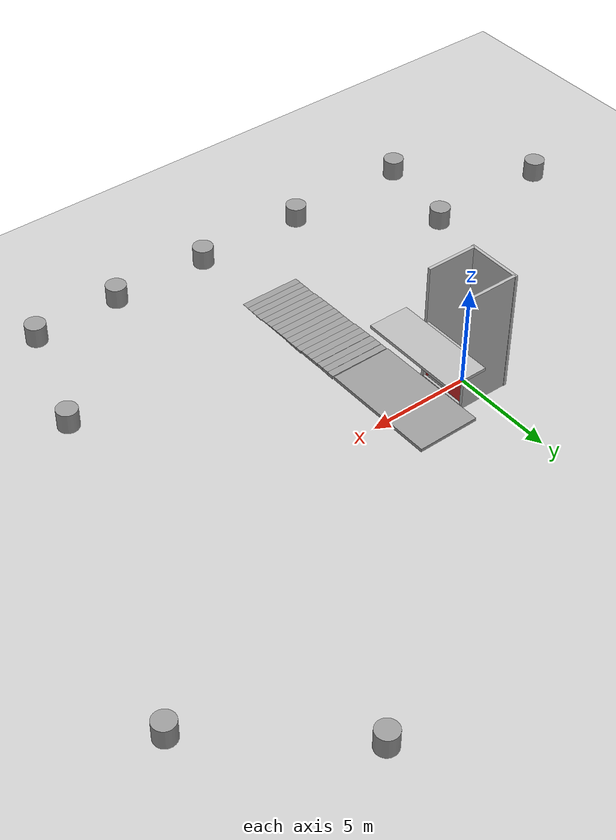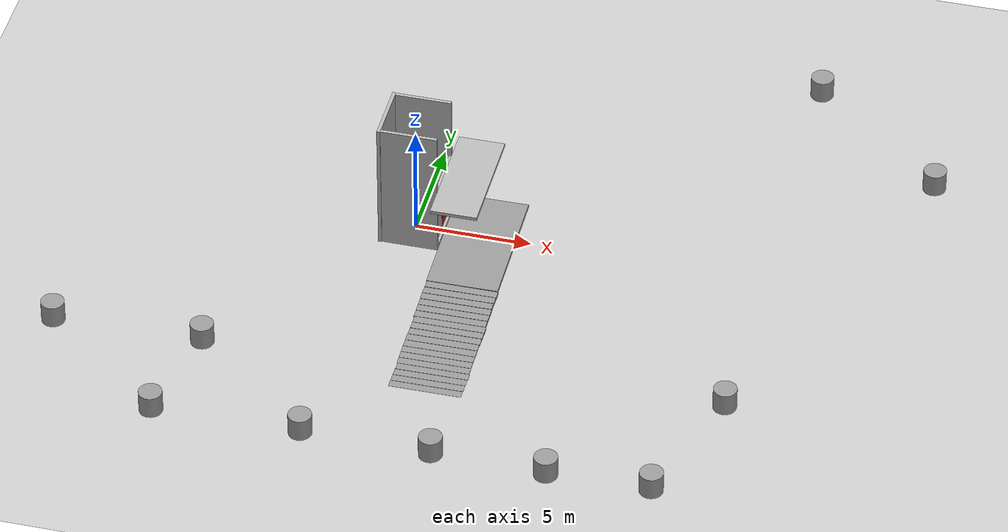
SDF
<sdf version="1.7">
 <world name="default">
  <model name="ground_plane">
   <static>1</static>
   <link name="link">
    <collision name="collision">
     <geometry><plane><normal>0 0 1</normal><size>100 100</size></plane></geometry>
     <surface><friction><ode><mu>100</mu><mu2>50</mu2></ode></friction></surface>
    </collision>
    <visual name="visual">
     <cast_shadows>0</cast_shadows>
     <geometry><plane><normal>0 0 1</normal><size>100 100</size></plane></geometry>
     <material>
      <script><uri>file://media/materials/scripts/gazebo.material</uri><name>Gazebo/Grey</name></script>
     </material>
    </visual>
   </link>
  </model>
  <model name="elevator">
   <pose>-0 -0 0.075 -0 -0 -2e-06</pose>
   <link name="link">
    <inertial>
     <mass>800</mass>
     <inertia><ixx>1</ixx><ixy>0</ixy><ixz>0</ixz><iyy>1</iyy><iyz>0</iyz><izz>1</izz></inertia>
    </inertial>
    <collision name="floor_collision"><geometry><box><size>2.25 2.25 0.15</size></box></geometry></collision>
    <visual name="floor_visual"><geometry><box><size>2.25 2.25 0.15</size></box></geometry></visual>
    <collision name="wall1_collision">
     <pose>1.0745 0.5725 1.125 0 -0 0</pose>
     <geometry><box><size>0.1 1.15 2.25</size></box></geometry>
    </collision>
    <visual name="wall1_visual">
     <pose>1.0745 0.5725 1.125 0 -0 0</pose>
     <geometry><box><size>0.1 1.15 2.25</size></box></geometry>
     <material><script><name>Gazebo/Red</name><uri>__default__</uri></script></material>
    </visual>
    <collision name="wall2_collision">
     <pose>1.0745 -1.0625 1.125 0 -0 0</pose>
     <geometry><box><size>0.1 0.125 2.25</size></box></geometry>
    </collision>
    <visual name="wall2_visual">
     <pose>1.0745 -1.0625 1.125 0 -0 0</pose>
     <geometry><box><size>0.1 0.125 2.25</size></box></geometry>
     <material><script><name>Gazebo/Red</name><uri>__default__</uri></script></material>
    </visual>
   </link>
   <link name="door">
    <pose>1.0745 -0.5 1.125 0 -0 0</pose>
    <collision name="collision"><geometry><box><size>0.08 1 2.25</size></box></geometry></collision>
    <visual name="visual"><geometry><box><size>0.08 1 2.25</size></box></geometry></visual>
    <inertial>
     <inertia><ixx>1</ixx><ixy>0</ixy><ixz>0</ixz><iyy>1</iyy><iyz>0</iyz><izz>1</izz></inertia>
     <mass>1</mass>
    </inertial>
   </link>
   <joint name="door" type="prismatic">
    <parent>link</parent>
    <child>door</child>
    <axis>
     <xyz>0 1 0</xyz>
     <limit><lower>0</lower><upper>1</upper><effort>10</effort></limit>
     <dynamics>
      <damping>2</damping>
      <spring_reference>0</spring_reference>
      <spring_stiffness>0</spring_stiffness>
     </dynamics>
    </axis>
   </joint>
   <joint name="lift" type="prismatic">
    <parent>world</parent>
    <child>link</child>
    <axis>
     <xyz>0 0 1</xyz>
     <limit><lower>0</lower><upper>10</upper><effort>100000</effort></limit>
     <dynamics>
      <damping>50</damping>
      <spring_reference>0</spring_reference>
      <spring_stiffness>0</spring_stiffness>
     </dynamics>
    </axis>
    <physics>
     <ode><implicit_spring_damper>1</implicit_spring_damper><limit><cfm>0</cfm><erp>0.2</erp></limit></ode>
    </physics>
   </joint>
   <plugin name="elevator_plugin" filename="libElevatorPlugin.so">
    <lift_joint>elevator::lift</lift_joint>
    <door_joint>elevator::door</door_joint>
    <floor_height>3.075</floor_height>
    <door_wait_time>10</door_wait_time>
    <topic>~/elevator</topic>
   </plugin>
  </model>
  <model name="elevator_shaft">
   <static>1</static>
   <link name="link">
    <collision name="shaft_wall1_collision">
     <pose>0 1.25 3 0 -0 0</pose>
     <geometry><box><size>2.5 0.15 6</size></box></geometry>
    </collision>
    <visual name="shaft_wall1_visual">
     <pose>0 1.25 3 0 -0 0</pose>
     <geometry><box><size>2.5 0.15 6</size></box></geometry>
    </visual>
    <collision name="shaft_wall2_collision">
     <pose>0 -1.25 3 0 -0 0</pose>
     <geometry><box><size>2.5 0.15 6</size></box></geometry>
    </collision>
    <visual name="shaft_wall2_visual">
     <pose>0 -1.25 3 0 -0 0</pose>
     <geometry><box><size>2.5 0.15 6</size></box></geometry>
    </visual>
    <collision name="shaft_wall3_collision">
     <pose>-1.25 0 3 0 -0 0</pose>
     <geometry><box><size>0.15 2.7 6</size></box></geometry>
    </collision>
    <visual name="shaft_wall3_visual">
     <pose>-1.25 0 3 0 -0 0</pose>
     <geometry><box><size>0.15 2.7 6</size></box></geometry>
    </visual>
    <collision name="floor0_collision">
     <pose>1.19 0 0.075 0 -0 0</pose>
     <geometry><box><size>0.12 2.5 0.15</size></box></geometry>
    </collision>
    <visual name="floor0_visual">
     <pose>1.19 0 0.075 0 -0 0</pose>
     <geometry><box><size>0.12 2.5 0.15</size></box></geometry>
    </visual>
    <collision name="floor1_collision">
     <pose>1.19 0 3.075 0 -0 0</pose>
     <geometry><box><size>0.12 2.5 0.15</size></box></geometry>
    </collision>
    <visual name="floor1_visual">
     <pose>1.19 0 3.075 0 -0 0</pose>
     <geometry><box><size>0.12 2.5 0.15</size></box></geometry>
    </visual>
   </link>
  </model>
  <model name="floor1">
   <pose>2.25 0 3.075 0 -0 0</pose>
   <static>1</static>
   <link name="link">
    <collision name="floor_collision"><geometry><box><size>2 5 0.15</size></box></geometry></collision>
    <visual name="floor_visual"><geometry><box><size>2 5 0.15</size></box></geometry></visual>
   </link>
  </model>
  <model name="unit_cylinder_13">
   <pose>20.8798 7.6408 0.499993 -1e-06 -0 0</pose>
   <link name="link">
    <inertial>
     <mass>1</mass>
     <inertia><ixx>0.145833</ixx><ixy>0</ixy><ixz>0</ixz><iyy>0.145833</iyy><iyz>0</iyz><izz>0.125</izz></inertia>
    </inertial>
    <collision name="collision">
     <geometry><cylinder><radius>0.5</radius><length>1</length></cylinder></geometry>
    </collision>
    <visual name="visual">
     <geometry><cylinder><radius>0.5</radius><length>1</length></cylinder></geometry>
     <material>
      <script><name>Gazebo/Grey</name><uri>file://media/materials/scripts/gazebo.material</uri></script>
     </material>
    </visual>
   </link>
  </model>
  <model name="unit_cylinder_15">
   <pose>14.9752 12.7015 0.499993 -1e-06 -0 0</pose>
   <link name="link">
    <inertial>
     <mass>1</mass>
     <inertia><ixx>0.145833</ixx><ixy>0</ixy><ixz>0</ixz><iyy>0.145833</iyy><iyz>0</iyz><izz>0.125</izz></inertia>
    </inertial>
    <collision name="collision">
     <geometry><cylinder><radius>0.5</radius><length>1</length></cylinder></geometry>
    </collision>
    <visual name="visual">
     <geometry><cylinder><radius>0.5</radius><length>1</length></cylinder></geometry>
     <material>
      <script><name>Gazebo/Grey</name><uri>file://media/materials/scripts/gazebo.material</uri></script>
     </material>
    </visual>
   </link>
  </model>
  <model name="unit_cylinder_17">
   <pose>15.0925 -8.06606 0.499993 -1e-06 -0 0</pose>
   <link name="link">
    <inertial>
     <mass>1</mass>
     <inertia><ixx>0.145833</ixx><ixy>0</ixy><ixz>0</ixz><iyy>0.145833</iyy><iyz>0</iyz><izz>0.125</izz></inertia>
    </inertial>
    <collision name="collision">
     <geometry><cylinder><radius>0.5</radius><length>1</length></cylinder></geometry>
    </collision>
    <visual name="visual">
     <geometry><cylinder><radius>0.5</radius><length>1</length></cylinder></geometry>
     <material>
      <script><name>Gazebo/Grey</name><uri>file://media/materials/scripts/gazebo.material</uri></script>
     </material>
    </visual>
   </link>
  </model>
  <model name="unit_cylinder_18">
   <pose>13.2609 -13.6825 0.499996 0 -0 0</pose>
   <link name="link">
    <inertial>
     <mass>1</mass>
     <inertia><ixx>0.145833</ixx><ixy>0</ixy><ixz>0</ixz><iyy>0.145833</iyy><iyz>0</iyz><izz>0.125</izz></inertia>
    </inertial>
    <collision name="collision">
     <geometry><cylinder><radius>0.5</radius><length>1</length></cylinder></geometry>
    </collision>
    <visual name="visual">
     <geometry><cylinder><radius>0.5</radius><length>1</length></cylinder></geometry>
     <material>
      <script><name>Gazebo/Grey</name><uri>file://media/materials/scripts/gazebo.material</uri></script>
     </material>
    </visual>
   </link>
  </model>
  <model name="unit_cylinder_19">
   <pose>8.91655 -13.7956 0.499993 -1e-06 -0 0</pose>
   <link name="link">
    <inertial>
     <mass>1</mass>
     <inertia><ixx>0.145833</ixx><ixy>0</ixy><ixz>0</ixz><iyy>0.145833</iyy><iyz>0</iyz><izz>0.125</izz></inertia>
    </inertial>
    <collision name="collision">
     <geometry><cylinder><radius>0.5</radius><length>1</length></cylinder></geometry>
    </collision>
    <visual name="visual">
     <geometry><cylinder><radius>0.5</radius><length>1</length></cylinder></geometry>
     <material>
      <script><name>Gazebo/Grey</name><uri>file://media/materials/scripts/gazebo.material</uri></script>
     </material>
    </visual>
   </link>
  </model>
  <model name="unit_cylinder_20">
   <pose>4.09429 -13.7282 0.499996 0 -0 0</pose>
   <link name="link">
    <inertial>
     <mass>1</mass>
     <inertia><ixx>0.145833</ixx><ixy>0</ixy><ixz>0</ixz><iyy>0.145833</iyy><iyz>0</iyz><izz>0.125</izz></inertia>
    </inertial>
    <collision name="collision">
     <geometry><cylinder><radius>0.5</radius><length>1</length></cylinder></geometry>
    </collision>
    <visual name="visual">
     <geometry><cylinder><radius>0.5</radius><length>1</length></cylinder></geometry>
     <material>
      <script><name>Gazebo/Grey</name><uri>file://media/materials/scripts/gazebo.material</uri></script>
     </material>
    </visual>
   </link>
  </model>
  <model name="unit_cylinder_21">
   <pose>-7.69117 -13.8033 0.499993 -1e-06 -0 0</pose>
   <link name="link">
    <inertial>
     <mass>1</mass>
     <inertia><ixx>0.145833</ixx><ixy>0</ixy><ixz>0</ixz><iyy>0.145833</iyy><iyz>0</iyz><izz>0.125</izz></inertia>
    </inertial>
    <collision name="collision">
     <geometry><cylinder><radius>0.5</radius><length>1</length></cylinder></geometry>
    </collision>
    <visual name="visual">
     <geometry><cylinder><radius>0.5</radius><length>1</length></cylinder></geometry>
     <material>
      <script><name>Gazebo/Grey</name><uri>file://media/materials/scripts/gazebo.material</uri></script>
     </material>
    </visual>
   </link>
  </model>
  <model name="unit_cylinder_22">
   <pose>-6.79754 -9.25639 0.499996 0 -0 0</pose>
   <link name="link">
    <inertial>
     <mass>1</mass>
     <inertia><ixx>0.145833</ixx><ixy>0</ixy><ixz>0</ixz><iyy>0.145833</iyy><iyz>0</iyz><izz>0.125</izz></inertia>
    </inertial>
    <collision name="collision">
     <geometry><cylinder><radius>0.5</radius><length>1</length></cylinder></geometry>
    </collision>
    <visual name="visual">
     <geometry><cylinder><radius>0.5</radius><length>1</length></cylinder></geometry>
     <material>
      <script><name>Gazebo/Grey</name><uri>file://media/materials/scripts/gazebo.material</uri></script>
     </material>
    </visual>
   </link>
  </model>
  <model name="unit_cylinder_23">
   <pose>-13.2069 -9.38891 0.499993 -1e-06 -0 0</pose>
   <link name="link">
    <inertial>
     <mass>1</mass>
     <inertia><ixx>0.145833</ixx><ixy>0</ixy><ixz>0</ixz><iyy>0.145833</iyy><iyz>0</iyz><izz>0.125</izz></inertia>
    </inertial>
    <collision name="collision">
     <geometry><cylinder><radius>0.5</radius><length>1</length></cylinder></geometry>
    </collision>
    <visual name="visual">
     <geometry><cylinder><radius>0.5</radius><length>1</length></cylinder></geometry>
     <material>
      <script><name>Gazebo/Grey</name><uri>file://media/materials/scripts/gazebo.material</uri></script>
     </material>
    </visual>
   </link>
  </model>
  <model name="unit_cylinder_24">
   <pose>-1.39553 -13.6899 0.499993 -1e-06 -0 0</pose>
   <link name="link">
    <inertial>
     <mass>1</mass>
     <inertia><ixx>0.145833</ixx><ixy>0</ixy><ixz>0</ixz><iyy>0.145833</iyy><iyz>0</iyz><izz>0.125</izz></inertia>
    </inertial>
    <collision name="collision">
     <geometry><cylinder><radius>0.5</radius><length>1</length></cylinder></geometry>
    </collision>
    <visual name="visual">
     <geometry><cylinder><radius>0.5</radius><length>1</length></cylinder></geometry>
     <material>
      <script><name>Gazebo/Grey</name><uri>file://media/materials/scripts/gazebo.material</uri></script>
     </material>
    </visual>
   </link>
  </model>
  <model name="unit_box_2_clone">
   <pose>2.87891 -4.08617 0.079638 0 -0.000274 0.005979</pose>
   <link name="link">
    <inertial>
     <mass>1</mass>
     <inertia>
      <ixx>0.166667</ixx>
      <ixy>0</ixy>
      <ixz>0</ixz>
      <iyy>0.166667</iyy>
      <iyz>0</iyz>
      <izz>0.166667</izz>
     </inertia>
    </inertial>
    <collision name="collision"><geometry><box><size>3.07419 0.364988 0.160119</size></box></geometry></collision>
    <visual name="visual">
     <geometry><box><size>3.07419 0.364988 0.160119</size></box></geometry>
     <material>
      <script><name>Gazebo/Grey</name><uri>file://media/materials/scripts/gazebo.material</uri></script>
     </material>
    </visual>
   </link>
  </model>
  <model name="unit_box_2_clone_clone">
   <pose>2.87354 -4.45494 0.074309 -0 -0.000277 0.006428</pose>
   <link name="link">
    <inertial>
     <mass>1</mass>
     <inertia>
      <ixx>0.166667</ixx>
      <ixy>0</ixy>
      <ixz>0</ixz>
      <iyy>0.166667</iyy>
      <iyz>0</iyz>
      <izz>0.166667</izz>
     </inertia>
    </inertial>
    <collision name="collision"><geometry><box><size>3.07419 0.364988 0.149468</size></box></geometry></collision>
    <visual name="visual">
     <geometry><box><size>3.07419 0.364988 0.149468</size></box></geometry>
     <material>
      <script><name>Gazebo/Grey</name><uri>file://media/materials/scripts/gazebo.material</uri></script>
     </material>
    </visual>
   </link>
  </model>
  <model name="unit_box_2_clone_clone_clone">
   <pose>2.88868 -4.83575 0.072865 -0 -3e-06 0.006789</pose>
   <link name="link">
    <inertial>
     <mass>1</mass>
     <inertia>
      <ixx>0.166667</ixx>
      <ixy>0</ixy>
      <ixz>0</ixz>
      <iyy>0.166667</iyy>
      <iyz>0</iyz>
      <izz>0.166667</izz>
     </inertia>
    </inertial>
    <collision name="collision"><geometry><box><size>3.07419 0.364605 0.145741</size></box></geometry></collision>
    <visual name="visual">
     <geometry><box><size>3.07419 0.364605 0.145741</size></box></geometry>
     <material>
      <script><name>Gazebo/Grey</name><uri>file://media/materials/scripts/gazebo.material</uri></script>
     </material>
    </visual>
   </link>
  </model>
  <model name="unit_box_2_clone_clone_clone_clone">
   <pose>2.88835 -5.20255 0.066861 -0 0.00028 0.005877</pose>
   <link name="link">
    <inertial>
     <mass>1</mass>
     <inertia>
      <ixx>0.166667</ixx>
      <ixy>0</ixy>
      <ixz>0</ixz>
      <iyy>0.166667</iyy>
      <iyz>0</iyz>
      <izz>0.166667</izz>
     </inertia>
    </inertial>
    <collision name="collision"><geometry><box><size>3.07419 0.364988 0.134583</size></box></geometry></collision>
    <visual name="visual">
     <geometry><box><size>3.07419 0.364988 0.134583</size></box></geometry>
     <material>
      <script><name>Gazebo/Grey</name><uri>file://media/materials/scripts/gazebo.material</uri></script>
     </material>
    </visual>
   </link>
  </model>
  <model name="unit_box_2_clone_clone_clone_clone_clone">
   <pose>2.88977 -5.56812 0.060117 0 -0.000274 0.005497</pose>
   <link name="link">
    <inertial>
     <mass>1</mass>
     <inertia>
      <ixx>0.166667</ixx>
      <ixy>0</ixy>
      <ixz>0</ixz>
      <iyy>0.166667</iyy>
      <iyz>0</iyz>
      <izz>0.166667</izz>
     </inertia>
    </inertial>
    <collision name="collision"><geometry><box><size>3.07419 0.364988 0.121075</size></box></geometry></collision>
    <visual name="visual">
     <geometry><box><size>3.07419 0.364988 0.121075</size></box></geometry>
     <material>
      <script><name>Gazebo/Grey</name><uri>file://media/materials/scripts/gazebo.material</uri></script>
     </material>
    </visual>
   </link>
  </model>
  <model name="unit_box_2_clone_clone_clone_clone_clone_clone">
   <pose>2.92579 -5.93336 0.056372 0 0.000285 0.005744</pose>
   <link name="link">
    <inertial>
     <mass>1</mass>
     <inertia>
      <ixx>0.166667</ixx>
      <ixy>0</ixy>
      <ixz>0</ixz>
      <iyy>0.166667</iyy>
      <iyz>0</iyz>
      <izz>0.166667</izz>
     </inertia>
    </inertial>
    <collision name="collision"><geometry><box><size>3.07419 0.364988 0.113619</size></box></geometry></collision>
    <visual name="visual">
     <geometry><box><size>3.07419 0.364988 0.113619</size></box></geometry>
     <material>
      <script><name>Gazebo/Grey</name><uri>file://media/materials/scripts/gazebo.material</uri></script>
     </material>
    </visual>
   </link>
  </model>
  <model name="unit_box_2_clone_clone_clone_clone_clone_clone_clone">
   <pose>2.92194 -6.29889 0.050749 0 0.000287 0.005524</pose>
   <link name="link">
    <inertial>
     <mass>1</mass>
     <inertia>
      <ixx>0.166667</ixx>
      <ixy>0</ixy>
      <ixz>0</ixz>
      <iyy>0.166667</iyy>
      <iyz>0</iyz>
      <izz>0.166667</izz>
     </inertia>
    </inertial>
    <collision name="collision"><geometry><box><size>3.07419 0.364988 0.102379</size></box></geometry></collision>
    <visual name="visual">
     <geometry><box><size>3.07419 0.364988 0.102379</size></box></geometry>
     <material>
      <script><name>Gazebo/Grey</name><uri>file://media/materials/scripts/gazebo.material</uri></script>
     </material>
    </visual>
   </link>
  </model>
  <model name="unit_box_2_clone_clone_clone_clone_clone_clone_clone_clone">
   <pose>2.91454 -6.66502 0.044381 0 0.000289 0.005965</pose>
   <link name="link">
    <inertial>
     <mass>1</mass>
     <inertia>
      <ixx>0.166667</ixx>
      <ixy>0</ixy>
      <ixz>0</ixz>
      <iyy>0.166667</iyy>
      <iyz>0</iyz>
      <izz>0.166667</izz>
     </inertia>
    </inertial>
    <collision name="collision">
     <geometry><box><size>3.07419 0.364988 0.0896518</size></box></geometry>
    </collision>
    <visual name="visual">
     <geometry><box><size>3.07419 0.364988 0.0896518</size></box></geometry>
     <material>
      <script><name>Gazebo/Grey</name><uri>file://media/materials/scripts/gazebo.material</uri></script>
     </material>
    </visual>
   </link>
  </model>
  <model name="unit_box_2_clone_clone_clone_clone_clone_clone_clone_clone_clone">
   <pose>2.89727 -7.03731 0.038914 0 -0.000291 0.005951</pose>
   <link name="link">
    <inertial>
     <mass>1</mass>
     <inertia>
      <ixx>0.166667</ixx>
      <ixy>0</ixy>
      <ixz>0</ixz>
      <iyy>0.166667</iyy>
      <iyz>0</iyz>
      <izz>0.166667</izz>
     </inertia>
    </inertial>
    <collision name="collision">
     <geometry><box><size>3.07419 0.375744 0.0787212</size></box></geometry>
    </collision>
    <visual name="visual">
     <geometry><box><size>3.07419 0.375744 0.0787212</size></box></geometry>
     <material>
      <script><name>Gazebo/Grey</name><uri>file://media/materials/scripts/gazebo.material</uri></script>
     </material>
    </visual>
   </link>
  </model>
  <model name="unit_box_2_clone_clone_clone_clone_clone_clone_clone_clone_clone_clone">
   <pose>2.90329 -7.41389 0.033371 -0 -0.000292 0.005292</pose>
   <link name="link">
    <inertial>
     <mass>1</mass>
     <inertia>
      <ixx>0.166667</ixx>
      <ixy>0</ixy>
      <ixz>0</ixz>
      <iyy>0.166667</iyy>
      <iyz>0</iyz>
      <izz>0.166667</izz>
     </inertia>
    </inertial>
    <collision name="collision">
     <geometry><box><size>3.07419 0.374813 0.0676406</size></box></geometry>
    </collision>
    <visual name="visual">
     <geometry><box><size>3.07419 0.374813 0.0676406</size></box></geometry>
     <material>
      <script><name>Gazebo/Grey</name><uri>file://media/materials/scripts/gazebo.material</uri></script>
     </material>
    </visual>
   </link>
  </model>
  <model name="unit_box_2_clone_clone_clone_clone_clone_clone_clone_clone_clone_clone_clone">
   <pose>2.90057 -7.78 0.029277 -1e-06 -0.000293 0.00473</pose>
   <link name="link">
    <inertial>
     <mass>1</mass>
     <inertia>
      <ixx>0.166667</ixx>
      <ixy>0</ixy>
      <ixz>0</ixz>
      <iyy>0.166667</iyy>
      <iyz>0</iyz>
      <izz>0.166667</izz>
     </inertia>
    </inertial>
    <collision name="collision"><geometry><box><size>3.07419 0.35542 0.0594557</size></box></geometry></collision>
    <visual name="visual">
     <geometry><box><size>3.07419 0.35542 0.0594557</size></box></geometry>
     <material>
      <script><name>Gazebo/Grey</name><uri>file://media/materials/scripts/gazebo.material</uri></script>
     </material>
    </visual>
   </link>
  </model>
  <model name="unit_box_2_clone_clone_clone_clone_clone_clone_clone_clone_clone_clone_clone_clone">
   <pose>2.90493 -8.1355 0.024206 -1e-06 0.000293 0.004689</pose>
   <link name="link">
    <inertial>
     <mass>1</mass>
     <inertia>
      <ixx>0.166667</ixx>
      <ixy>0</ixy>
      <ixz>0</ixz>
      <iyy>0.166667</iyy>
      <iyz>0</iyz>
      <izz>0.166667</izz>
     </inertia>
    </inertial>
    <collision name="collision"><geometry><box><size>3.07419 0.35542 0.0493127</size></box></geometry></collision>
    <visual name="visual">
     <geometry><box><size>3.07419 0.35542 0.0493127</size></box></geometry>
     <material>
      <script><name>Gazebo/Grey</name><uri>file://media/materials/scripts/gazebo.material</uri></script>
     </material>
    </visual>
   </link>
  </model>
  <model name="unit_box_2_clone_clone_clone_clone_clone_clone_clone_clone_clone_clone_clone_clone_clone">
   <pose>2.91317 -8.49105 0.020057 -1e-06 -0.000293 0.00458</pose>
   <link name="link">
    <inertial>
     <mass>1</mass>
     <inertia>
      <ixx>0.166667</ixx>
      <ixy>0</ixy>
      <ixz>0</ixz>
      <iyy>0.166667</iyy>
      <iyz>0</iyz>
      <izz>0.166667</izz>
     </inertia>
    </inertial>
    <collision name="collision"><geometry><box><size>3.07419 0.35542 0.0410132</size></box></geometry></collision>
    <visual name="visual">
     <geometry><box><size>3.07419 0.35542 0.0410132</size></box></geometry>
     <material>
      <script><name>Gazebo/Grey</name><uri>file://media/materials/scripts/gazebo.material</uri></script>
     </material>
    </visual>
   </link>
  </model>
  <model name="unit_box_2_clone_clone_0">
   <pose>2.88927 -3.70651 0.08189 1e-06 -0.000273 0.000974</pose>
   <link name="link">
    <inertial>
     <mass>1</mass>
     <inertia>
      <ixx>0.166667</ixx>
      <ixy>0</ixy>
      <ixz>0</ixz>
      <iyy>0.166667</iyy>
      <iyz>0</iyz>
      <izz>0.166667</izz>
     </inertia>
    </inertial>
    <collision name="collision"><geometry><box><size>3.07419 0.364988 0.164618</size></box></geometry></collision>
    <visual name="visual">
     <geometry><box><size>3.07419 0.364988 0.164618</size></box></geometry>
     <material>
      <script><name>Gazebo/Grey</name><uri>file://media/materials/scripts/gazebo.material</uri></script>
     </material>
    </visual>
   </link>
  </model>
  <model name="unit_box_2_clone_clone_0_clone">
   <pose>2.82825 -0.604802 0.080255 0 -3e-06 0.007706</pose>
   <link name="link">
    <inertial>
     <mass>1</mass>
     <inertia>
      <ixx>0.166667</ixx>
      <ixy>0</ixy>
      <ixz>0</ixz>
      <iyy>0.166667</iyy>
      <iyz>0</iyz>
      <izz>0.166667</izz>
     </inertia>
    </inertial>
    <collision name="collision"><geometry><box><size>3.07419 5.7609 0.160519</size></box></geometry></collision>
    <visual name="visual">
     <geometry><box><size>3.07419 5.7609 0.160519</size></box></geometry>
     <material>
      <script><name>Gazebo/Grey</name><uri>file://media/materials/scripts/gazebo.material</uri></script>
     </material>
    </visual>
   </link>
  </model>
  <model name="unit_box_2_clone_clone_clone_clone_clone_clone_clone_clone_clone_clone_clone_clone_clone_clone">
   <pose>2.94743 -8.84708 0.016284 1e-06 0.000295 0.004154</pose>
   <link name="link">
    <inertial>
     <mass>1</mass>
     <inertia>
      <ixx>0.166667</ixx>
      <ixy>0</ixy>
      <ixz>0</ixz>
      <iyy>0.166667</iyy>
      <iyz>0</iyz>
      <izz>0.166667</izz>
     </inertia>
    </inertial>
    <collision name="collision"><geometry><box><size>3.07419 0.35542 0.0334754</size></box></geometry></collision>
    <visual name="visual">
     <geometry><box><size>3.07419 0.35542 0.0334754</size></box></geometry>
     <material>
      <script><name>Gazebo/Grey</name><uri>file://media/materials/scripts/gazebo.material</uri></script>
     </material>
    </visual>
   </link>
  </model>
  <model name="unit_box_2_clone_clone_clone_clone_clone_clone_clone_clone_clone_clone_clone_clone_clone_clone_clone">
   <pose>2.92731 -9.20276 0.011114 -1e-06 -0.000295 0.004267</pose>
   <link name="link">
    <inertial>
     <mass>1</mass>
     <inertia>
      <ixx>0.166667</ixx>
      <ixy>0</ixy>
      <ixz>0</ixz>
      <iyy>0.166667</iyy>
      <iyz>0</iyz>
      <izz>0.166667</izz>
     </inertia>
    </inertial>
    <collision name="collision"><geometry><box><size>3.07419 0.35542 0.0231337</size></box></geometry></collision>
    <visual name="visual">
     <geometry><box><size>3.07419 0.35542 0.0231337</size></box></geometry>
     <material>
      <script><name>Gazebo/Grey</name><uri>file://media/materials/scripts/gazebo.material</uri></script>
     </material>
    </visual>
   </link>
  </model>
  <model name="unit_box_2_clone_clone_clone_clone_clone_clone_clone_clone_clone_clone_clone_clone_clone_clone_clone_clone">
   <pose>2.92471 -9.5588 0.006929 1e-06 -0.000296 0.004558</pose>
   <link name="link">
    <inertial>
     <mass>1</mass>
     <inertia>
      <ixx>0.166667</ixx>
      <ixy>0</ixy>
      <ixz>0</ixz>
      <iyy>0.166667</iyy>
      <iyz>0</iyz>
      <izz>0.166667</izz>
     </inertia>
    </inertial>
    <collision name="collision"><geometry><box><size>3.07419 0.35542 0.014768</size></box></geometry></collision>
    <visual name="visual">
     <geometry><box><size>3.07419 0.35542 0.014768</size></box></geometry>
     <material>
      <script><name>Gazebo/Grey</name><uri>file://media/materials/scripts/gazebo.material</uri></script>
     </material>
    </visual>
   </link>
  </model>
  <model name="unit_box_2_clone_clone_clone_clone_clone_clone_clone_clone_clone_clone_clone_clone_clone_clone_clone_clone_clone">
   <pose>2.91473 -9.91577 0.00221 -1e-06 0.000296 0.003579</pose>
   <link name="link">
    <inertial>
     <mass>1</mass>
     <inertia>
      <ixx>0.166667</ixx>
      <ixy>0</ixy>
      <ixz>0</ixz>
      <iyy>0.166667</iyy>
      <iyz>0</iyz>
      <izz>0.166667</izz>
     </inertia>
    </inertial>
    <collision name="collision">
     <geometry><box><size>3.07419 0.35542 0.00532987</size></box></geometry>
    </collision>
    <visual name="visual">
     <geometry><box><size>3.07419 0.35542 0.00532987</size></box></geometry>
     <material>
      <script><name>Gazebo/Grey</name><uri>file://media/materials/scripts/gazebo.material</uri></script>
     </material>
    </visual>
   </link>
  </model>
 </world>
</sdf>
